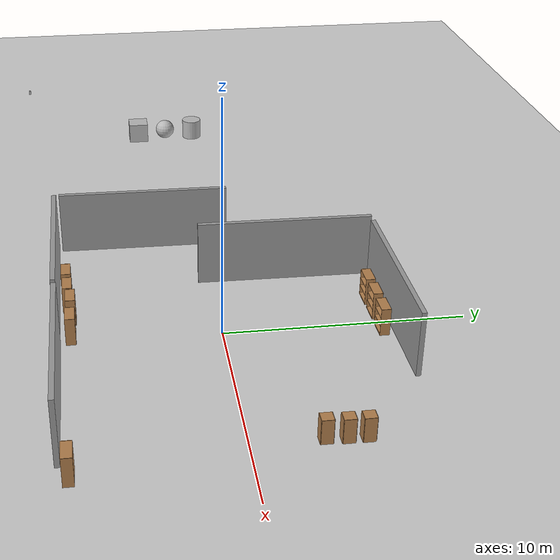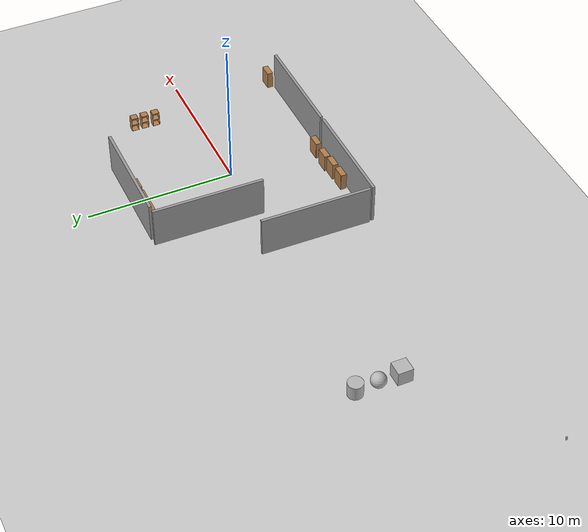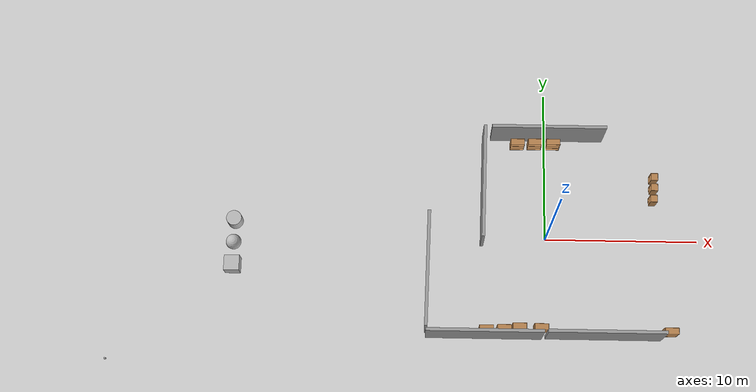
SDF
<sdf version="1.7">
 <world name="default">
  <light name="sun" type="directional">
   <pose>0 0 10 0 -0 0</pose>
   <diffuse>0.8 0.8 0.8 1</diffuse>
   <specular>0.2 0.2 0.2 1</specular>
   <attenuation>
    <range>1000</range>
    <constant>0.9</constant>
    <linear>0.01</linear>
    <quadratic>0.001</quadratic>
   </attenuation>
   <direction>-0.5 0.1 -0.9</direction>
   <spot><inner_angle>0</inner_angle><outer_angle>0</outer_angle><falloff>0</falloff></spot>
  </light>
  <model name="ground_plane">
   <static>1</static>
   <link name="link">
    <collision name="collision">
     <geometry><plane><normal>0 0 1</normal><size>100 100</size></plane></geometry>
     <surface><friction><ode><mu>100</mu><mu2>50</mu2></ode></friction></surface>
    </collision>
    <visual name="visual">
     <cast_shadows>0</cast_shadows>
     <geometry><plane><normal>0 0 1</normal><size>100 100</size></plane></geometry>
     <material>
      <script><uri>file://media/materials/scripts/gazebo.material</uri><name>Gazebo/Grey</name></script>
     </material>
    </visual>
   </link>
  </model>
  <gravity>0 0 -9.8</gravity>
  <magnetic_field>6e-06 2.3e-05 -4.2e-05</magnetic_field>
  <atmosphere type="adiabatic"/>
  <physics type="ode">
   <max_step_size>0.001</max_step_size>
   <real_time_factor>1</real_time_factor>
   <real_time_update_rate>1000</real_time_update_rate>
  </physics>
  <scene><ambient>0.4 0.4 0.4 1</ambient><background>0.7 0.7 0.7 1</background><shadows>1</shadows></scene>
  <spherical_coordinates>
   <surface_model>EARTH_WGS84</surface_model>
   <latitude_deg>0</latitude_deg>
   <longitude_deg>0</longitude_deg>
   <elevation>0</elevation>
   <heading_deg>0</heading_deg>
  </spherical_coordinates>
  <model name="grey_wall">
   <static>1</static>
   <link name="link">
    <pose>0 0 1.4 0 -0 0</pose>
    <collision name="collision"><geometry><box><size>7.5 0.2 2.8</size></box></geometry></collision>
    <visual name="visual">
     <cast_shadows>0</cast_shadows>
     <geometry><box><size>7.5 0.2 2.8</size></box></geometry>
     <material>
      <script>
       <uri>model://grey_wall/materials/scripts</uri>
       <uri>model://grey_wall/materials/textures</uri>
       <name>vrc/grey_wall</name>
      </script>
     </material>
    </visual>
   </link>
   <pose>0.106878 6.95057 0 0 -0 0</pose>
  </model>
  <model name="grey_wall_0">
   <static>1</static>
   <link name="link">
    <pose>0 0 1.4 0 -0 0</pose>
    <collision name="collision"><geometry><box><size>7.5 0.2 2.8</size></box></geometry></collision>
    <visual name="visual">
     <cast_shadows>0</cast_shadows>
     <geometry><box><size>7.5 0.2 2.8</size></box></geometry>
     <material>
      <script>
       <uri>model://grey_wall/materials/scripts</uri>
       <uri>model://grey_wall/materials/textures</uri>
       <name>vrc/grey_wall</name>
      </script>
     </material>
    </visual>
   </link>
   <pose>-4.14677 3.24091 0 0 0 -1.58679</pose>
  </model>
  <model name="grey_wall_1">
   <static>1</static>
   <link name="link">
    <pose>0 0 1.4 0 -0 0</pose>
    <collision name="collision"><geometry><box><size>7.5 0.2 2.8</size></box></geometry></collision>
    <visual name="visual">
     <cast_shadows>0</cast_shadows>
     <geometry><box><size>7.5 0.2 2.8</size></box></geometry>
     <material>
      <script>
       <uri>model://grey_wall/materials/scripts</uri>
       <uri>model://grey_wall/materials/textures</uri>
       <name>vrc/grey_wall</name>
      </script>
     </material>
    </visual>
   </link>
   <pose>-7.74047 -2.58996 0 0 -0 1.55456</pose>
  </model>
  <model name="grey_wall_2">
   <static>1</static>
   <link name="link">
    <pose>0 0 1.4 0 -0 0</pose>
    <collision name="collision"><geometry><box><size>7.5 0.2 2.8</size></box></geometry></collision>
    <visual name="visual">
     <cast_shadows>0</cast_shadows>
     <geometry><box><size>7.5 0.2 2.8</size></box></geometry>
     <material>
      <script>
       <uri>model://grey_wall/materials/scripts</uri>
       <uri>model://grey_wall/materials/textures</uri>
       <name>vrc/grey_wall</name>
      </script>
     </material>
    </visual>
   </link>
   <pose>-4.06497 -6.56277 0 0 -0 0</pose>
  </model>
  <model name="bookshelf">
   <static>1</static>
   <link name="link">
    <inertial><mass>1</mass></inertial>
    <collision name="back">
     <pose>0 0.005 0.6 0 -0 0</pose>
     <geometry><box><size>0.9 0.01 1.2</size></box></geometry>
    </collision>
    <visual name="visual1">
     <pose>0 0.005 0.6 0 -0 0</pose>
     <geometry><box><size>0.9 0.01 1.2</size></box></geometry>
     <material>
      <script><uri>file://media/materials/scripts/gazebo.material</uri><name>Gazebo/Wood</name></script>
     </material>
    </visual>
    <collision name="left_side">
     <pose>0.45 -0.195 0.6 0 -0 0</pose>
     <geometry><box><size>0.02 0.4 1.2</size></box></geometry>
    </collision>
    <visual name="visual2">
     <pose>0.45 -0.195 0.6 0 -0 0</pose>
     <geometry><box><size>0.02 0.4 1.2</size></box></geometry>
     <material>
      <script><uri>file://media/materials/scripts/gazebo.material</uri><name>Gazebo/Wood</name></script>
     </material>
    </visual>
    <collision name="right_side">
     <pose>-0.45 -0.195 0.6 0 -0 0</pose>
     <geometry><box><size>0.02 0.4 1.2</size></box></geometry>
    </collision>
    <visual name="visual3">
     <pose>-0.45 -0.195 0.6 0 -0 0</pose>
     <geometry><box><size>0.02 0.4 1.2</size></box></geometry>
     <material>
      <script><uri>file://media/materials/scripts/gazebo.material</uri><name>Gazebo/Wood</name></script>
     </material>
    </visual>
    <collision name="bottom">
     <pose>0 -0.195 0.03 0 -0 0</pose>
     <geometry><box><size>0.88 0.4 0.06</size></box></geometry>
    </collision>
    <visual name="visual4">
     <pose>0 -0.195 0.03 0 -0 0</pose>
     <geometry><box><size>0.88 0.4 0.06</size></box></geometry>
     <material>
      <script><uri>file://media/materials/scripts/gazebo.material</uri><name>Gazebo/Wood</name></script>
     </material>
    </visual>
    <collision name="top">
     <pose>0 -0.195 1.19 0 -0 0</pose>
     <geometry><box><size>0.88 0.4 0.02</size></box></geometry>
    </collision>
    <visual name="visual5">
     <pose>0 -0.195 1.19 0 -0 0</pose>
     <geometry><box><size>0.88 0.4 0.02</size></box></geometry>
     <material>
      <script><uri>file://media/materials/scripts/gazebo.material</uri><name>Gazebo/Wood</name></script>
     </material>
    </visual>
    <collision name="low_shelf">
     <pose>0 -0.195 0.43 0 -0 0</pose>
     <geometry><box><size>0.88 0.4 0.02</size></box></geometry>
    </collision>
    <visual name="visual6">
     <pose>0 -0.195 0.43 0 -0 0</pose>
     <geometry><box><size>0.88 0.4 0.02</size></box></geometry>
     <material>
      <script><uri>file://media/materials/scripts/gazebo.material</uri><name>Gazebo/Wood</name></script>
     </material>
    </visual>
    <collision name="high_shelf">
     <pose>0 -0.195 0.8 0 -0 0</pose>
     <geometry><box><size>0.88 0.4 0.02</size></box></geometry>
    </collision>
    <visual name="visual7">
     <pose>0 -0.195 0.8 0 -0 0</pose>
     <geometry><box><size>0.88 0.4 0.02</size></box></geometry>
     <material>
      <script><uri>file://media/materials/scripts/gazebo.material</uri><name>Gazebo/Wood</name></script>
     </material>
    </visual>
   </link>
   <pose>-0.709223 6.60823 0 0 -0 0</pose>
  </model>
  <model name="bookshelf_0">
   <static>1</static>
   <link name="link">
    <inertial><mass>1</mass></inertial>
    <collision name="back">
     <pose>0 0.005 0.6 0 -0 0</pose>
     <geometry><box><size>0.9 0.01 1.2</size></box></geometry>
    </collision>
    <visual name="visual1">
     <pose>0 0.005 0.6 0 -0 0</pose>
     <geometry><box><size>0.9 0.01 1.2</size></box></geometry>
     <material>
      <script><uri>file://media/materials/scripts/gazebo.material</uri><name>Gazebo/Wood</name></script>
     </material>
    </visual>
    <collision name="left_side">
     <pose>0.45 -0.195 0.6 0 -0 0</pose>
     <geometry><box><size>0.02 0.4 1.2</size></box></geometry>
    </collision>
    <visual name="visual2">
     <pose>0.45 -0.195 0.6 0 -0 0</pose>
     <geometry><box><size>0.02 0.4 1.2</size></box></geometry>
     <material>
      <script><uri>file://media/materials/scripts/gazebo.material</uri><name>Gazebo/Wood</name></script>
     </material>
    </visual>
    <collision name="right_side">
     <pose>-0.45 -0.195 0.6 0 -0 0</pose>
     <geometry><box><size>0.02 0.4 1.2</size></box></geometry>
    </collision>
    <visual name="visual3">
     <pose>-0.45 -0.195 0.6 0 -0 0</pose>
     <geometry><box><size>0.02 0.4 1.2</size></box></geometry>
     <material>
      <script><uri>file://media/materials/scripts/gazebo.material</uri><name>Gazebo/Wood</name></script>
     </material>
    </visual>
    <collision name="bottom">
     <pose>0 -0.195 0.03 0 -0 0</pose>
     <geometry><box><size>0.88 0.4 0.06</size></box></geometry>
    </collision>
    <visual name="visual4">
     <pose>0 -0.195 0.03 0 -0 0</pose>
     <geometry><box><size>0.88 0.4 0.06</size></box></geometry>
     <material>
      <script><uri>file://media/materials/scripts/gazebo.material</uri><name>Gazebo/Wood</name></script>
     </material>
    </visual>
    <collision name="top">
     <pose>0 -0.195 1.19 0 -0 0</pose>
     <geometry><box><size>0.88 0.4 0.02</size></box></geometry>
    </collision>
    <visual name="visual5">
     <pose>0 -0.195 1.19 0 -0 0</pose>
     <geometry><box><size>0.88 0.4 0.02</size></box></geometry>
     <material>
      <script><uri>file://media/materials/scripts/gazebo.material</uri><name>Gazebo/Wood</name></script>
     </material>
    </visual>
    <collision name="low_shelf">
     <pose>0 -0.195 0.43 0 -0 0</pose>
     <geometry><box><size>0.88 0.4 0.02</size></box></geometry>
    </collision>
    <visual name="visual6">
     <pose>0 -0.195 0.43 0 -0 0</pose>
     <geometry><box><size>0.88 0.4 0.02</size></box></geometry>
     <material>
      <script><uri>file://media/materials/scripts/gazebo.material</uri><name>Gazebo/Wood</name></script>
     </material>
    </visual>
    <collision name="high_shelf">
     <pose>0 -0.195 0.8 0 -0 0</pose>
     <geometry><box><size>0.88 0.4 0.02</size></box></geometry>
    </collision>
    <visual name="visual7">
     <pose>0 -0.195 0.8 0 -0 0</pose>
     <geometry><box><size>0.88 0.4 0.02</size></box></geometry>
     <material>
      <script><uri>file://media/materials/scripts/gazebo.material</uri><name>Gazebo/Wood</name></script>
     </material>
    </visual>
   </link>
   <pose>7.96976 -5.96439 0 0 -0 0</pose>
  </model>
  <model name="bookshelf_1">
   <static>1</static>
   <link name="link">
    <inertial><mass>1</mass></inertial>
    <collision name="back">
     <pose>0 0.005 0.6 0 -0 0</pose>
     <geometry><box><size>0.9 0.01 1.2</size></box></geometry>
    </collision>
    <visual name="visual1">
     <pose>0 0.005 0.6 0 -0 0</pose>
     <geometry><box><size>0.9 0.01 1.2</size></box></geometry>
     <material>
      <script><uri>file://media/materials/scripts/gazebo.material</uri><name>Gazebo/Wood</name></script>
     </material>
    </visual>
    <collision name="left_side">
     <pose>0.45 -0.195 0.6 0 -0 0</pose>
     <geometry><box><size>0.02 0.4 1.2</size></box></geometry>
    </collision>
    <visual name="visual2">
     <pose>0.45 -0.195 0.6 0 -0 0</pose>
     <geometry><box><size>0.02 0.4 1.2</size></box></geometry>
     <material>
      <script><uri>file://media/materials/scripts/gazebo.material</uri><name>Gazebo/Wood</name></script>
     </material>
    </visual>
    <collision name="right_side">
     <pose>-0.45 -0.195 0.6 0 -0 0</pose>
     <geometry><box><size>0.02 0.4 1.2</size></box></geometry>
    </collision>
    <visual name="visual3">
     <pose>-0.45 -0.195 0.6 0 -0 0</pose>
     <geometry><box><size>0.02 0.4 1.2</size></box></geometry>
     <material>
      <script><uri>file://media/materials/scripts/gazebo.material</uri><name>Gazebo/Wood</name></script>
     </material>
    </visual>
    <collision name="bottom">
     <pose>0 -0.195 0.03 0 -0 0</pose>
     <geometry><box><size>0.88 0.4 0.06</size></box></geometry>
    </collision>
    <visual name="visual4">
     <pose>0 -0.195 0.03 0 -0 0</pose>
     <geometry><box><size>0.88 0.4 0.06</size></box></geometry>
     <material>
      <script><uri>file://media/materials/scripts/gazebo.material</uri><name>Gazebo/Wood</name></script>
     </material>
    </visual>
    <collision name="top">
     <pose>0 -0.195 1.19 0 -0 0</pose>
     <geometry><box><size>0.88 0.4 0.02</size></box></geometry>
    </collision>
    <visual name="visual5">
     <pose>0 -0.195 1.19 0 -0 0</pose>
     <geometry><box><size>0.88 0.4 0.02</size></box></geometry>
     <material>
      <script><uri>file://media/materials/scripts/gazebo.material</uri><name>Gazebo/Wood</name></script>
     </material>
    </visual>
    <collision name="low_shelf">
     <pose>0 -0.195 0.43 0 -0 0</pose>
     <geometry><box><size>0.88 0.4 0.02</size></box></geometry>
    </collision>
    <visual name="visual6">
     <pose>0 -0.195 0.43 0 -0 0</pose>
     <geometry><box><size>0.88 0.4 0.02</size></box></geometry>
     <material>
      <script><uri>file://media/materials/scripts/gazebo.material</uri><name>Gazebo/Wood</name></script>
     </material>
    </visual>
    <collision name="high_shelf">
     <pose>0 -0.195 0.8 0 -0 0</pose>
     <geometry><box><size>0.88 0.4 0.02</size></box></geometry>
    </collision>
    <visual name="visual7">
     <pose>0 -0.195 0.8 0 -0 0</pose>
     <geometry><box><size>0.88 0.4 0.02</size></box></geometry>
     <material>
      <script><uri>file://media/materials/scripts/gazebo.material</uri><name>Gazebo/Wood</name></script>
     </material>
    </visual>
   </link>
   <pose>0.514239 6.6154 0 0 -0 0</pose>
  </model>
  <model name="bookshelf_2">
   <static>1</static>
   <link name="link">
    <inertial><mass>1</mass></inertial>
    <collision name="back">
     <pose>0 0.005 0.6 0 -0 0</pose>
     <geometry><box><size>0.9 0.01 1.2</size></box></geometry>
    </collision>
    <visual name="visual1">
     <pose>0 0.005 0.6 0 -0 0</pose>
     <geometry><box><size>0.9 0.01 1.2</size></box></geometry>
     <material>
      <script><uri>file://media/materials/scripts/gazebo.material</uri><name>Gazebo/Wood</name></script>
     </material>
    </visual>
    <collision name="left_side">
     <pose>0.45 -0.195 0.6 0 -0 0</pose>
     <geometry><box><size>0.02 0.4 1.2</size></box></geometry>
    </collision>
    <visual name="visual2">
     <pose>0.45 -0.195 0.6 0 -0 0</pose>
     <geometry><box><size>0.02 0.4 1.2</size></box></geometry>
     <material>
      <script><uri>file://media/materials/scripts/gazebo.material</uri><name>Gazebo/Wood</name></script>
     </material>
    </visual>
    <collision name="right_side">
     <pose>-0.45 -0.195 0.6 0 -0 0</pose>
     <geometry><box><size>0.02 0.4 1.2</size></box></geometry>
    </collision>
    <visual name="visual3">
     <pose>-0.45 -0.195 0.6 0 -0 0</pose>
     <geometry><box><size>0.02 0.4 1.2</size></box></geometry>
     <material>
      <script><uri>file://media/materials/scripts/gazebo.material</uri><name>Gazebo/Wood</name></script>
     </material>
    </visual>
    <collision name="bottom">
     <pose>0 -0.195 0.03 0 -0 0</pose>
     <geometry><box><size>0.88 0.4 0.06</size></box></geometry>
    </collision>
    <visual name="visual4">
     <pose>0 -0.195 0.03 0 -0 0</pose>
     <geometry><box><size>0.88 0.4 0.06</size></box></geometry>
     <material>
      <script><uri>file://media/materials/scripts/gazebo.material</uri><name>Gazebo/Wood</name></script>
     </material>
    </visual>
    <collision name="top">
     <pose>0 -0.195 1.19 0 -0 0</pose>
     <geometry><box><size>0.88 0.4 0.02</size></box></geometry>
    </collision>
    <visual name="visual5">
     <pose>0 -0.195 1.19 0 -0 0</pose>
     <geometry><box><size>0.88 0.4 0.02</size></box></geometry>
     <material>
      <script><uri>file://media/materials/scripts/gazebo.material</uri><name>Gazebo/Wood</name></script>
     </material>
    </visual>
    <collision name="low_shelf">
     <pose>0 -0.195 0.43 0 -0 0</pose>
     <geometry><box><size>0.88 0.4 0.02</size></box></geometry>
    </collision>
    <visual name="visual6">
     <pose>0 -0.195 0.43 0 -0 0</pose>
     <geometry><box><size>0.88 0.4 0.02</size></box></geometry>
     <material>
      <script><uri>file://media/materials/scripts/gazebo.material</uri><name>Gazebo/Wood</name></script>
     </material>
    </visual>
    <collision name="high_shelf">
     <pose>0 -0.195 0.8 0 -0 0</pose>
     <geometry><box><size>0.88 0.4 0.02</size></box></geometry>
    </collision>
    <visual name="visual7">
     <pose>0 -0.195 0.8 0 -0 0</pose>
     <geometry><box><size>0.88 0.4 0.02</size></box></geometry>
     <material>
      <script><uri>file://media/materials/scripts/gazebo.material</uri><name>Gazebo/Wood</name></script>
     </material>
    </visual>
   </link>
   <pose>-0.367653 -5.8239 0 0 -0 0</pose>
  </model>
  <model name="bookshelf_3">
   <static>1</static>
   <link name="link">
    <inertial><mass>1</mass></inertial>
    <collision name="back">
     <pose>0 0.005 0.6 0 -0 0</pose>
     <geometry><box><size>0.9 0.01 1.2</size></box></geometry>
    </collision>
    <visual name="visual1">
     <pose>0 0.005 0.6 0 -0 0</pose>
     <geometry><box><size>0.9 0.01 1.2</size></box></geometry>
     <material>
      <script><uri>file://media/materials/scripts/gazebo.material</uri><name>Gazebo/Wood</name></script>
     </material>
    </visual>
    <collision name="left_side">
     <pose>0.45 -0.195 0.6 0 -0 0</pose>
     <geometry><box><size>0.02 0.4 1.2</size></box></geometry>
    </collision>
    <visual name="visual2">
     <pose>0.45 -0.195 0.6 0 -0 0</pose>
     <geometry><box><size>0.02 0.4 1.2</size></box></geometry>
     <material>
      <script><uri>file://media/materials/scripts/gazebo.material</uri><name>Gazebo/Wood</name></script>
     </material>
    </visual>
    <collision name="right_side">
     <pose>-0.45 -0.195 0.6 0 -0 0</pose>
     <geometry><box><size>0.02 0.4 1.2</size></box></geometry>
    </collision>
    <visual name="visual3">
     <pose>-0.45 -0.195 0.6 0 -0 0</pose>
     <geometry><box><size>0.02 0.4 1.2</size></box></geometry>
     <material>
      <script><uri>file://media/materials/scripts/gazebo.material</uri><name>Gazebo/Wood</name></script>
     </material>
    </visual>
    <collision name="bottom">
     <pose>0 -0.195 0.03 0 -0 0</pose>
     <geometry><box><size>0.88 0.4 0.06</size></box></geometry>
    </collision>
    <visual name="visual4">
     <pose>0 -0.195 0.03 0 -0 0</pose>
     <geometry><box><size>0.88 0.4 0.06</size></box></geometry>
     <material>
      <script><uri>file://media/materials/scripts/gazebo.material</uri><name>Gazebo/Wood</name></script>
     </material>
    </visual>
    <collision name="top">
     <pose>0 -0.195 1.19 0 -0 0</pose>
     <geometry><box><size>0.88 0.4 0.02</size></box></geometry>
    </collision>
    <visual name="visual5">
     <pose>0 -0.195 1.19 0 -0 0</pose>
     <geometry><box><size>0.88 0.4 0.02</size></box></geometry>
     <material>
      <script><uri>file://media/materials/scripts/gazebo.material</uri><name>Gazebo/Wood</name></script>
     </material>
    </visual>
    <collision name="low_shelf">
     <pose>0 -0.195 0.43 0 -0 0</pose>
     <geometry><box><size>0.88 0.4 0.02</size></box></geometry>
    </collision>
    <visual name="visual6">
     <pose>0 -0.195 0.43 0 -0 0</pose>
     <geometry><box><size>0.88 0.4 0.02</size></box></geometry>
     <material>
      <script><uri>file://media/materials/scripts/gazebo.material</uri><name>Gazebo/Wood</name></script>
     </material>
    </visual>
    <collision name="high_shelf">
     <pose>0 -0.195 0.8 0 -0 0</pose>
     <geometry><box><size>0.88 0.4 0.02</size></box></geometry>
    </collision>
    <visual name="visual7">
     <pose>0 -0.195 0.8 0 -0 0</pose>
     <geometry><box><size>0.88 0.4 0.02</size></box></geometry>
     <material>
      <script><uri>file://media/materials/scripts/gazebo.material</uri><name>Gazebo/Wood</name></script>
     </material>
    </visual>
   </link>
   <pose>-2.74927 -5.92509 0 0 -0 0</pose>
  </model>
  <model name="bookshelf_4">
   <static>1</static>
   <link name="link">
    <inertial><mass>1</mass></inertial>
    <collision name="back">
     <pose>0 0.005 0.6 0 -0 0</pose>
     <geometry><box><size>0.9 0.01 1.2</size></box></geometry>
    </collision>
    <visual name="visual1">
     <pose>0 0.005 0.6 0 -0 0</pose>
     <geometry><box><size>0.9 0.01 1.2</size></box></geometry>
     <material>
      <script><uri>file://media/materials/scripts/gazebo.material</uri><name>Gazebo/Wood</name></script>
     </material>
    </visual>
    <collision name="left_side">
     <pose>0.45 -0.195 0.6 0 -0 0</pose>
     <geometry><box><size>0.02 0.4 1.2</size></box></geometry>
    </collision>
    <visual name="visual2">
     <pose>0.45 -0.195 0.6 0 -0 0</pose>
     <geometry><box><size>0.02 0.4 1.2</size></box></geometry>
     <material>
      <script><uri>file://media/materials/scripts/gazebo.material</uri><name>Gazebo/Wood</name></script>
     </material>
    </visual>
    <collision name="right_side">
     <pose>-0.45 -0.195 0.6 0 -0 0</pose>
     <geometry><box><size>0.02 0.4 1.2</size></box></geometry>
    </collision>
    <visual name="visual3">
     <pose>-0.45 -0.195 0.6 0 -0 0</pose>
     <geometry><box><size>0.02 0.4 1.2</size></box></geometry>
     <material>
      <script><uri>file://media/materials/scripts/gazebo.material</uri><name>Gazebo/Wood</name></script>
     </material>
    </visual>
    <collision name="bottom">
     <pose>0 -0.195 0.03 0 -0 0</pose>
     <geometry><box><size>0.88 0.4 0.06</size></box></geometry>
    </collision>
    <visual name="visual4">
     <pose>0 -0.195 0.03 0 -0 0</pose>
     <geometry><box><size>0.88 0.4 0.06</size></box></geometry>
     <material>
      <script><uri>file://media/materials/scripts/gazebo.material</uri><name>Gazebo/Wood</name></script>
     </material>
    </visual>
    <collision name="top">
     <pose>0 -0.195 1.19 0 -0 0</pose>
     <geometry><box><size>0.88 0.4 0.02</size></box></geometry>
    </collision>
    <visual name="visual5">
     <pose>0 -0.195 1.19 0 -0 0</pose>
     <geometry><box><size>0.88 0.4 0.02</size></box></geometry>
     <material>
      <script><uri>file://media/materials/scripts/gazebo.material</uri><name>Gazebo/Wood</name></script>
     </material>
    </visual>
    <collision name="low_shelf">
     <pose>0 -0.195 0.43 0 -0 0</pose>
     <geometry><box><size>0.88 0.4 0.02</size></box></geometry>
    </collision>
    <visual name="visual6">
     <pose>0 -0.195 0.43 0 -0 0</pose>
     <geometry><box><size>0.88 0.4 0.02</size></box></geometry>
     <material>
      <script><uri>file://media/materials/scripts/gazebo.material</uri><name>Gazebo/Wood</name></script>
     </material>
    </visual>
    <collision name="high_shelf">
     <pose>0 -0.195 0.8 0 -0 0</pose>
     <geometry><box><size>0.88 0.4 0.02</size></box></geometry>
    </collision>
    <visual name="visual7">
     <pose>0 -0.195 0.8 0 -0 0</pose>
     <geometry><box><size>0.88 0.4 0.02</size></box></geometry>
     <material>
      <script><uri>file://media/materials/scripts/gazebo.material</uri><name>Gazebo/Wood</name></script>
     </material>
    </visual>
   </link>
   <pose>-1.76889 -5.80329 0 0 -0 0</pose>
  </model>
  <model name="bookshelf_5">
   <static>1</static>
   <link name="link">
    <inertial><mass>1</mass></inertial>
    <collision name="back">
     <pose>0 0.005 0.6 0 -0 0</pose>
     <geometry><box><size>0.9 0.01 1.2</size></box></geometry>
    </collision>
    <visual name="visual1">
     <pose>0 0.005 0.6 0 -0 0</pose>
     <geometry><box><size>0.9 0.01 1.2</size></box></geometry>
     <material>
      <script><uri>file://media/materials/scripts/gazebo.material</uri><name>Gazebo/Wood</name></script>
     </material>
    </visual>
    <collision name="left_side">
     <pose>0.45 -0.195 0.6 0 -0 0</pose>
     <geometry><box><size>0.02 0.4 1.2</size></box></geometry>
    </collision>
    <visual name="visual2">
     <pose>0.45 -0.195 0.6 0 -0 0</pose>
     <geometry><box><size>0.02 0.4 1.2</size></box></geometry>
     <material>
      <script><uri>file://media/materials/scripts/gazebo.material</uri><name>Gazebo/Wood</name></script>
     </material>
    </visual>
    <collision name="right_side">
     <pose>-0.45 -0.195 0.6 0 -0 0</pose>
     <geometry><box><size>0.02 0.4 1.2</size></box></geometry>
    </collision>
    <visual name="visual3">
     <pose>-0.45 -0.195 0.6 0 -0 0</pose>
     <geometry><box><size>0.02 0.4 1.2</size></box></geometry>
     <material>
      <script><uri>file://media/materials/scripts/gazebo.material</uri><name>Gazebo/Wood</name></script>
     </material>
    </visual>
    <collision name="bottom">
     <pose>0 -0.195 0.03 0 -0 0</pose>
     <geometry><box><size>0.88 0.4 0.06</size></box></geometry>
    </collision>
    <visual name="visual4">
     <pose>0 -0.195 0.03 0 -0 0</pose>
     <geometry><box><size>0.88 0.4 0.06</size></box></geometry>
     <material>
      <script><uri>file://media/materials/scripts/gazebo.material</uri><name>Gazebo/Wood</name></script>
     </material>
    </visual>
    <collision name="top">
     <pose>0 -0.195 1.19 0 -0 0</pose>
     <geometry><box><size>0.88 0.4 0.02</size></box></geometry>
    </collision>
    <visual name="visual5">
     <pose>0 -0.195 1.19 0 -0 0</pose>
     <geometry><box><size>0.88 0.4 0.02</size></box></geometry>
     <material>
      <script><uri>file://media/materials/scripts/gazebo.material</uri><name>Gazebo/Wood</name></script>
     </material>
    </visual>
    <collision name="low_shelf">
     <pose>0 -0.195 0.43 0 -0 0</pose>
     <geometry><box><size>0.88 0.4 0.02</size></box></geometry>
    </collision>
    <visual name="visual6">
     <pose>0 -0.195 0.43 0 -0 0</pose>
     <geometry><box><size>0.88 0.4 0.02</size></box></geometry>
     <material>
      <script><uri>file://media/materials/scripts/gazebo.material</uri><name>Gazebo/Wood</name></script>
     </material>
    </visual>
    <collision name="high_shelf">
     <pose>0 -0.195 0.8 0 -0 0</pose>
     <geometry><box><size>0.88 0.4 0.02</size></box></geometry>
    </collision>
    <visual name="visual7">
     <pose>0 -0.195 0.8 0 -0 0</pose>
     <geometry><box><size>0.88 0.4 0.02</size></box></geometry>
     <material>
      <script><uri>file://media/materials/scripts/gazebo.material</uri><name>Gazebo/Wood</name></script>
     </material>
    </visual>
   </link>
   <pose>-1.85946 6.58991 0 0 -0 0</pose>
  </model>
  <model name="bookshelf_6">
   <static>1</static>
   <link name="link">
    <inertial><mass>1</mass></inertial>
    <collision name="back">
     <pose>0 0.005 0.6 0 -0 0</pose>
     <geometry><box><size>0.9 0.01 1.2</size></box></geometry>
    </collision>
    <visual name="visual1">
     <pose>0 0.005 0.6 0 -0 0</pose>
     <geometry><box><size>0.9 0.01 1.2</size></box></geometry>
     <material>
      <script><uri>file://media/materials/scripts/gazebo.material</uri><name>Gazebo/Wood</name></script>
     </material>
    </visual>
    <collision name="left_side">
     <pose>0.45 -0.195 0.6 0 -0 0</pose>
     <geometry><box><size>0.02 0.4 1.2</size></box></geometry>
    </collision>
    <visual name="visual2">
     <pose>0.45 -0.195 0.6 0 -0 0</pose>
     <geometry><box><size>0.02 0.4 1.2</size></box></geometry>
     <material>
      <script><uri>file://media/materials/scripts/gazebo.material</uri><name>Gazebo/Wood</name></script>
     </material>
    </visual>
    <collision name="right_side">
     <pose>-0.45 -0.195 0.6 0 -0 0</pose>
     <geometry><box><size>0.02 0.4 1.2</size></box></geometry>
    </collision>
    <visual name="visual3">
     <pose>-0.45 -0.195 0.6 0 -0 0</pose>
     <geometry><box><size>0.02 0.4 1.2</size></box></geometry>
     <material>
      <script><uri>file://media/materials/scripts/gazebo.material</uri><name>Gazebo/Wood</name></script>
     </material>
    </visual>
    <collision name="bottom">
     <pose>0 -0.195 0.03 0 -0 0</pose>
     <geometry><box><size>0.88 0.4 0.06</size></box></geometry>
    </collision>
    <visual name="visual4">
     <pose>0 -0.195 0.03 0 -0 0</pose>
     <geometry><box><size>0.88 0.4 0.06</size></box></geometry>
     <material>
      <script><uri>file://media/materials/scripts/gazebo.material</uri><name>Gazebo/Wood</name></script>
     </material>
    </visual>
    <collision name="top">
     <pose>0 -0.195 1.19 0 -0 0</pose>
     <geometry><box><size>0.88 0.4 0.02</size></box></geometry>
    </collision>
    <visual name="visual5">
     <pose>0 -0.195 1.19 0 -0 0</pose>
     <geometry><box><size>0.88 0.4 0.02</size></box></geometry>
     <material>
      <script><uri>file://media/materials/scripts/gazebo.material</uri><name>Gazebo/Wood</name></script>
     </material>
    </visual>
    <collision name="low_shelf">
     <pose>0 -0.195 0.43 0 -0 0</pose>
     <geometry><box><size>0.88 0.4 0.02</size></box></geometry>
    </collision>
    <visual name="visual6">
     <pose>0 -0.195 0.43 0 -0 0</pose>
     <geometry><box><size>0.88 0.4 0.02</size></box></geometry>
     <material>
      <script><uri>file://media/materials/scripts/gazebo.material</uri><name>Gazebo/Wood</name></script>
     </material>
    </visual>
    <collision name="high_shelf">
     <pose>0 -0.195 0.8 0 -0 0</pose>
     <geometry><box><size>0.88 0.4 0.02</size></box></geometry>
    </collision>
    <visual name="visual7">
     <pose>0 -0.195 0.8 0 -0 0</pose>
     <geometry><box><size>0.88 0.4 0.02</size></box></geometry>
     <material>
      <script><uri>file://media/materials/scripts/gazebo.material</uri><name>Gazebo/Wood</name></script>
     </material>
    </visual>
   </link>
   <pose>-3.90426 -5.96744 0 0 -0 0</pose>
  </model>
  <model name="grey_wall_3">
   <static>1</static>
   <link name="link">
    <pose>0 0 1.4 0 -0 0</pose>
    <collision name="collision"><geometry><box><size>7.5 0.2 2.8</size></box></geometry></collision>
    <visual name="visual">
     <cast_shadows>0</cast_shadows>
     <geometry><box><size>7.5 0.2 2.8</size></box></geometry>
     <material>
      <script>
       <uri>model://grey_wall/materials/scripts</uri>
       <uri>model://grey_wall/materials/textures</uri>
       <name>vrc/grey_wall</name>
      </script>
     </material>
    </visual>
   </link>
   <pose>3.65897 -6.53181 0 0 -0 0</pose>
  </model>
  <model name="cabinet">
   <static>1</static>
   <link name="cabinet_bottom_plate">
    <inertial>
     <pose>0 0 -1 0 -0 0</pose>
     <inertia><ixx>2.05</ixx><ixy>0</ixy><ixz>0</ixz><iyy>2.05</iyy><iyz>0</iyz><izz>2.05</izz></inertia>
     <mass>25</mass>
    </inertial>
    <collision name="cabinet_bottom_plate_geom">
     <pose>0 0 0.01 0 -0 0</pose>
     <geometry><box><size>0.45 0.45 0.02</size></box></geometry>
    </collision>
    <visual name="cabinet_bottom_plate_geom_visual">
     <pose>0 0 0.01 0 -0 0</pose>
     <geometry><box><size>0.45 0.45 0.02</size></box></geometry>
     <material>
      <script><uri>file://media/materials/scripts/gazebo.material</uri><name>Gazebo/Wood</name></script>
     </material>
    </visual>
    <collision name="cabinet_bottom_plate_geom_cabinet_back_plate">
     <pose>0.235 0 0.51 0 -0 0</pose>
     <geometry><box><size>0.02 0.45 1.02</size></box></geometry>
    </collision>
    <visual name="cabinet_bottom_plate_geom_cabinet_back_plate_visual">
     <pose>0.235 0 0.51 0 -0 0</pose>
     <geometry><box><size>0.02 0.45 1.02</size></box></geometry>
     <material>
      <script><uri>file://media/materials/scripts/gazebo.material</uri><name>Gazebo/Wood</name></script>
     </material>
    </visual>
    <collision name="cabinet_bottom_plate_geom_cabinet_left_plate">
     <pose>0 0.235 0.51 0 -0 0</pose>
     <geometry><box><size>0.45 0.02 1.02</size></box></geometry>
    </collision>
    <visual name="cabinet_bottom_plate_geom_cabinet_left_plate_visual">
     <pose>0 0.235 0.51 0 -0 0</pose>
     <geometry><box><size>0.45 0.02 1.02</size></box></geometry>
     <material>
      <script><uri>file://media/materials/scripts/gazebo.material</uri><name>Gazebo/Wood</name></script>
     </material>
    </visual>
    <collision name="cabinet_bottom_plate_geom_cabinet_middle_plate">
     <pose>0 0 0.51 0 -0 0</pose>
     <geometry><box><size>0.45 0.45 0.02</size></box></geometry>
    </collision>
    <visual name="cabinet_bottom_plate_geom_cabinet_middle_plate_visual">
     <pose>0 0 0.51 0 -0 0</pose>
     <geometry><box><size>0.45 0.45 0.02</size></box></geometry>
     <material>
      <script><uri>file://media/materials/scripts/gazebo.material</uri><name>Gazebo/Wood</name></script>
     </material>
    </visual>
    <collision name="cabinet_bottom_plate_geom_cabinet_right_plate">
     <pose>0 -0.235 0.51 0 -0 0</pose>
     <geometry><box><size>0.45 0.02 1.02</size></box></geometry>
    </collision>
    <visual name="cabinet_bottom_plate_geom_cabinet_right_plate_visual">
     <pose>0 -0.235 0.51 0 -0 0</pose>
     <geometry><box><size>0.45 0.02 1.02</size></box></geometry>
     <material>
      <script><uri>file://media/materials/scripts/gazebo.material</uri><name>Gazebo/Wood</name></script>
     </material>
    </visual>
    <collision name="cabinet_bottom_plate_geom_cabinet_top_plate">
     <pose>0 0 1.01 0 -0 0</pose>
     <geometry><box><size>0.45 0.45 0.02</size></box></geometry>
    </collision>
    <visual name="cabinet_bottom_plate_geom_cabinet_top_plate_visual">
     <pose>0 0 1.01 0 -0 0</pose>
     <geometry><box><size>0.45 0.45 0.02</size></box></geometry>
     <material>
      <script><uri>file://media/materials/scripts/gazebo.material</uri><name>Gazebo/Wood</name></script>
     </material>
    </visual>
   </link>
   <pose>7.19314 4.16812 0 0 -0 0</pose>
  </model>
  <model name="cabinet_0">
   <static>1</static>
   <link name="cabinet_bottom_plate">
    <inertial>
     <pose>0 0 -1 0 -0 0</pose>
     <inertia><ixx>2.05</ixx><ixy>0</ixy><ixz>0</ixz><iyy>2.05</iyy><iyz>0</iyz><izz>2.05</izz></inertia>
     <mass>25</mass>
    </inertial>
    <collision name="cabinet_bottom_plate_geom">
     <pose>0 0 0.01 0 -0 0</pose>
     <geometry><box><size>0.45 0.45 0.02</size></box></geometry>
    </collision>
    <visual name="cabinet_bottom_plate_geom_visual">
     <pose>0 0 0.01 0 -0 0</pose>
     <geometry><box><size>0.45 0.45 0.02</size></box></geometry>
     <material>
      <script><uri>file://media/materials/scripts/gazebo.material</uri><name>Gazebo/Wood</name></script>
     </material>
    </visual>
    <collision name="cabinet_bottom_plate_geom_cabinet_back_plate">
     <pose>0.235 0 0.51 0 -0 0</pose>
     <geometry><box><size>0.02 0.45 1.02</size></box></geometry>
    </collision>
    <visual name="cabinet_bottom_plate_geom_cabinet_back_plate_visual">
     <pose>0.235 0 0.51 0 -0 0</pose>
     <geometry><box><size>0.02 0.45 1.02</size></box></geometry>
     <material>
      <script><uri>file://media/materials/scripts/gazebo.material</uri><name>Gazebo/Wood</name></script>
     </material>
    </visual>
    <collision name="cabinet_bottom_plate_geom_cabinet_left_plate">
     <pose>0 0.235 0.51 0 -0 0</pose>
     <geometry><box><size>0.45 0.02 1.02</size></box></geometry>
    </collision>
    <visual name="cabinet_bottom_plate_geom_cabinet_left_plate_visual">
     <pose>0 0.235 0.51 0 -0 0</pose>
     <geometry><box><size>0.45 0.02 1.02</size></box></geometry>
     <material>
      <script><uri>file://media/materials/scripts/gazebo.material</uri><name>Gazebo/Wood</name></script>
     </material>
    </visual>
    <collision name="cabinet_bottom_plate_geom_cabinet_middle_plate">
     <pose>0 0 0.51 0 -0 0</pose>
     <geometry><box><size>0.45 0.45 0.02</size></box></geometry>
    </collision>
    <visual name="cabinet_bottom_plate_geom_cabinet_middle_plate_visual">
     <pose>0 0 0.51 0 -0 0</pose>
     <geometry><box><size>0.45 0.45 0.02</size></box></geometry>
     <material>
      <script><uri>file://media/materials/scripts/gazebo.material</uri><name>Gazebo/Wood</name></script>
     </material>
    </visual>
    <collision name="cabinet_bottom_plate_geom_cabinet_right_plate">
     <pose>0 -0.235 0.51 0 -0 0</pose>
     <geometry><box><size>0.45 0.02 1.02</size></box></geometry>
    </collision>
    <visual name="cabinet_bottom_plate_geom_cabinet_right_plate_visual">
     <pose>0 -0.235 0.51 0 -0 0</pose>
     <geometry><box><size>0.45 0.02 1.02</size></box></geometry>
     <material>
      <script><uri>file://media/materials/scripts/gazebo.material</uri><name>Gazebo/Wood</name></script>
     </material>
    </visual>
    <collision name="cabinet_bottom_plate_geom_cabinet_top_plate">
     <pose>0 0 1.01 0 -0 0</pose>
     <geometry><box><size>0.45 0.45 0.02</size></box></geometry>
    </collision>
    <visual name="cabinet_bottom_plate_geom_cabinet_top_plate_visual">
     <pose>0 0 1.01 0 -0 0</pose>
     <geometry><box><size>0.45 0.45 0.02</size></box></geometry>
     <material>
      <script><uri>file://media/materials/scripts/gazebo.material</uri><name>Gazebo/Wood</name></script>
     </material>
    </visual>
   </link>
   <pose>7.17565 3.44902 0 0 -0 0</pose>
  </model>
  <model name="cabinet_1">
   <static>1</static>
   <link name="cabinet_bottom_plate">
    <inertial>
     <pose>0 0 -1 0 -0 0</pose>
     <inertia><ixx>2.05</ixx><ixy>0</ixy><ixz>0</ixz><iyy>2.05</iyy><iyz>0</iyz><izz>2.05</izz></inertia>
     <mass>25</mass>
    </inertial>
    <collision name="cabinet_bottom_plate_geom">
     <pose>0 0 0.01 0 -0 0</pose>
     <geometry><box><size>0.45 0.45 0.02</size></box></geometry>
    </collision>
    <visual name="cabinet_bottom_plate_geom_visual">
     <pose>0 0 0.01 0 -0 0</pose>
     <geometry><box><size>0.45 0.45 0.02</size></box></geometry>
     <material>
      <script><uri>file://media/materials/scripts/gazebo.material</uri><name>Gazebo/Wood</name></script>
     </material>
    </visual>
    <collision name="cabinet_bottom_plate_geom_cabinet_back_plate">
     <pose>0.235 0 0.51 0 -0 0</pose>
     <geometry><box><size>0.02 0.45 1.02</size></box></geometry>
    </collision>
    <visual name="cabinet_bottom_plate_geom_cabinet_back_plate_visual">
     <pose>0.235 0 0.51 0 -0 0</pose>
     <geometry><box><size>0.02 0.45 1.02</size></box></geometry>
     <material>
      <script><uri>file://media/materials/scripts/gazebo.material</uri><name>Gazebo/Wood</name></script>
     </material>
    </visual>
    <collision name="cabinet_bottom_plate_geom_cabinet_left_plate">
     <pose>0 0.235 0.51 0 -0 0</pose>
     <geometry><box><size>0.45 0.02 1.02</size></box></geometry>
    </collision>
    <visual name="cabinet_bottom_plate_geom_cabinet_left_plate_visual">
     <pose>0 0.235 0.51 0 -0 0</pose>
     <geometry><box><size>0.45 0.02 1.02</size></box></geometry>
     <material>
      <script><uri>file://media/materials/scripts/gazebo.material</uri><name>Gazebo/Wood</name></script>
     </material>
    </visual>
    <collision name="cabinet_bottom_plate_geom_cabinet_middle_plate">
     <pose>0 0 0.51 0 -0 0</pose>
     <geometry><box><size>0.45 0.45 0.02</size></box></geometry>
    </collision>
    <visual name="cabinet_bottom_plate_geom_cabinet_middle_plate_visual">
     <pose>0 0 0.51 0 -0 0</pose>
     <geometry><box><size>0.45 0.45 0.02</size></box></geometry>
     <material>
      <script><uri>file://media/materials/scripts/gazebo.material</uri><name>Gazebo/Wood</name></script>
     </material>
    </visual>
    <collision name="cabinet_bottom_plate_geom_cabinet_right_plate">
     <pose>0 -0.235 0.51 0 -0 0</pose>
     <geometry><box><size>0.45 0.02 1.02</size></box></geometry>
    </collision>
    <visual name="cabinet_bottom_plate_geom_cabinet_right_plate_visual">
     <pose>0 -0.235 0.51 0 -0 0</pose>
     <geometry><box><size>0.45 0.02 1.02</size></box></geometry>
     <material>
      <script><uri>file://media/materials/scripts/gazebo.material</uri><name>Gazebo/Wood</name></script>
     </material>
    </visual>
    <collision name="cabinet_bottom_plate_geom_cabinet_top_plate">
     <pose>0 0 1.01 0 -0 0</pose>
     <geometry><box><size>0.45 0.45 0.02</size></box></geometry>
    </collision>
    <visual name="cabinet_bottom_plate_geom_cabinet_top_plate_visual">
     <pose>0 0 1.01 0 -0 0</pose>
     <geometry><box><size>0.45 0.45 0.02</size></box></geometry>
     <material>
      <script><uri>file://media/materials/scripts/gazebo.material</uri><name>Gazebo/Wood</name></script>
     </material>
    </visual>
   </link>
   <pose>7.11881 2.67821 0 0 -0 0</pose>
  </model>
  <audio><device>default</device></audio>
  <model name="beer">
   <link name="link">
    <pose>0 0 0.115 0 -0 0</pose>
    <inertial>
     <mass>0.39</mass>
     <inertia><ixx>0.00058</ixx><ixy>0</ixy><ixz>0</ixz><iyy>0.00058</iyy><iyz>0</iyz><izz>0.00019</izz></inertia>
    </inertial>
    <collision name="collision">
     <geometry><cylinder><radius>0.055</radius><length>0.23</length></cylinder></geometry>
    </collision>
    <visual name="visual">
     <geometry><cylinder><radius>0.055</radius><length>0.23</length></cylinder></geometry>
     <material>
      <script>
       <uri>model://beer/materials/scripts</uri>
       <uri>model://beer/materials/textures</uri>
       <name>Beer/Diffuse</name>
      </script>
     </material>
    </visual>
   </link>
   <pose>-28.421 -8.37423 -8e-06 -1e-06 -0 -1.4e-05</pose>
  </model>
  <model name="textured_shapes">
   <pose>-20.5029 -0.59794 0.5 0 -0 0</pose>
   <link name="box">
    <pose>0 -1.5 0 0 -0 0</pose>
    <collision name="collision"><geometry><box><size>1 1 1</size></box></geometry></collision>
    <visual name="visual">
     <geometry><box><size>1 1 1</size></box></geometry>
     <material>
      <script>
       <uri>model://textured_shapes/materials/scripts</uri>
       <uri>model://textured_shapes/materials/textures</uri>
       <name>TexturedShape/Squares</name>
      </script>
     </material>
    </visual>
    <inertial>
     <inertia><ixx>1</ixx><ixy>0</ixy><ixz>0</ixz><iyy>1</iyy><iyz>0</iyz><izz>1</izz></inertia>
     <mass>1</mass>
    </inertial>
   </link>
   <link name="sphere">
    <collision name="collision"><geometry><sphere><radius>0.5</radius></sphere></geometry></collision>
    <visual name="visual">
     <geometry><sphere><radius>0.5</radius></sphere></geometry>
     <material>
      <script>
       <uri>model://textured_shapes/materials/scripts</uri>
       <uri>model://textured_shapes/materials/textures</uri>
       <name>TexturedShape/Squares</name>
      </script>
     </material>
    </visual>
    <inertial>
     <inertia><ixx>1</ixx><ixy>0</ixy><ixz>0</ixz><iyy>1</iyy><iyz>0</iyz><izz>1</izz></inertia>
     <mass>1</mass>
    </inertial>
   </link>
   <link name="cylinder">
    <pose>0 1.5 0 0 -0 0</pose>
    <collision name="collision">
     <geometry><cylinder><radius>0.5</radius><length>1</length></cylinder></geometry>
    </collision>
    <visual name="visual">
     <geometry><cylinder><radius>0.5</radius><length>1</length></cylinder></geometry>
     <material>
      <script>
       <uri>model://textured_shapes/materials/scripts</uri>
       <uri>model://textured_shapes/materials/textures</uri>
       <name>TexturedShape/Squares</name>
      </script>
     </material>
    </visual>
    <inertial>
     <inertia><ixx>1</ixx><ixy>0</ixy><ixz>0</ixz><iyy>1</iyy><iyz>0</iyz><izz>1</izz></inertia>
     <mass>1</mass>
    </inertial>
   </link>
  </model>
 </world>
</sdf>
